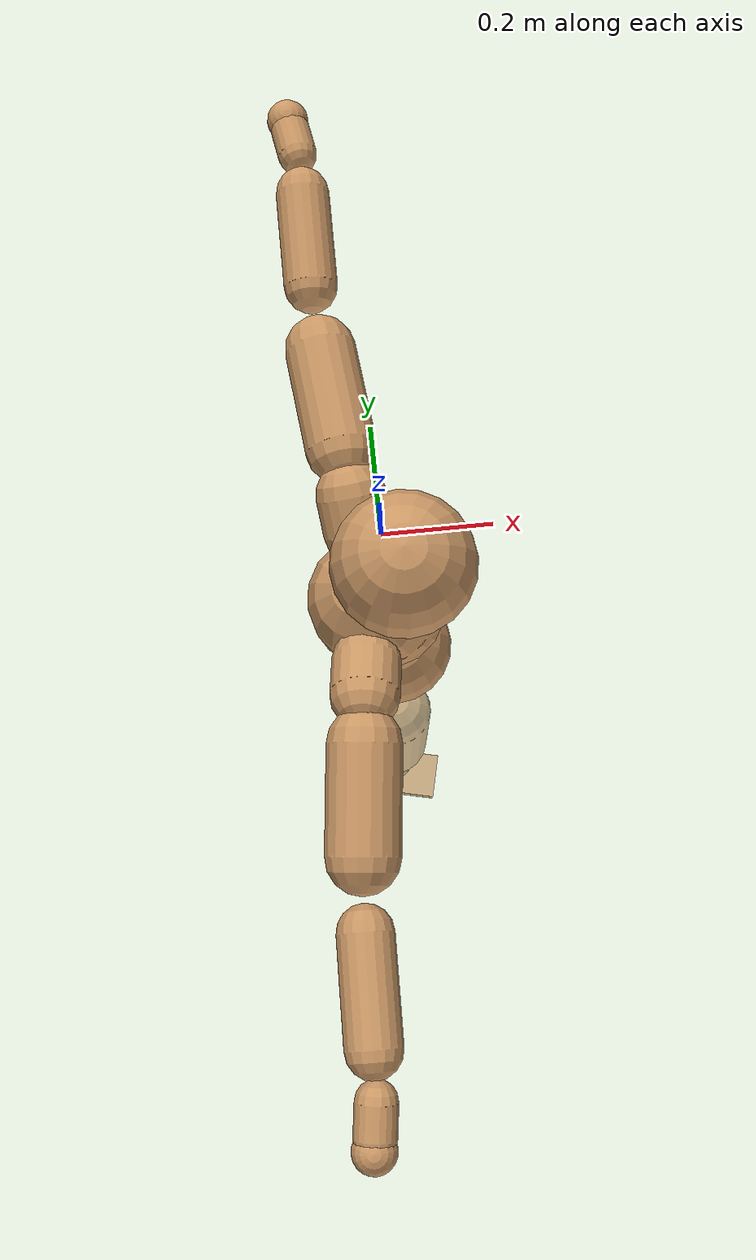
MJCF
<mujoco model="humanoid">
  <compiler coordinate="local" angle="radian"/>
  <default>
    <joint damping="0.0" armature="0.01" stiffness="0.0" limited="true"/>
    <geom conaffinity="1" condim="3" contype="7" margin="0.001" rgba="0.8 0.6 .4 1"/>
  </default>
  <asset>
    <texture type="skybox" builtin="gradient" rgb1=".4 .5 .6" rgb2="0 0 0" width="100" height="100"/>
    <texture builtin="flat" height="1278" mark="cross" markrgb="1 1 1" name="texgeom" random="0.01" rgb1="0.8 0.6 0.4" rgb2="0.8 0.6 0.4" type="cube" width="127"/>
    <texture builtin="checker" height="100" name="texplane" rgb1="0 0 0" rgb2="0.8 0.8 0.8" type="2d" width="100"/>
    <material name="MatPlane" reflectance="0.5" shininess="1" specular="1" texrepeat="60 60" texture="texplane"/>
    <material name="geom" texture="texgeom" texuniform="true"/>
  </asset>
  <worldbody>
    <light cutoff="100" diffuse="1 1 1" dir="-0 0 -1.3" directional="true" exponent="1" pos="0 0 1.3" specular=".1 .1 .1"/>
    <geom conaffinity="1" condim="3" name="floor" pos="0 0 0" rgba="0.8 0.9 0.8 1" size="100 100 .2" type="plane" material="MatPlane"/>
    <body name="Pelvis" pos="0.0004 -0.2077 0.0304">
      <freejoint name="Pelvis"/>
      <geom type="sphere" contype="1" conaffinity="1" density="500" size="0.1026" pos="0.0000 0.0000 0.0000" name="Pelvis"/>
      <body name="L_Hip" pos="-0.0069 0.0811 -0.0959">
        <joint name="L_Hip_x" type="hinge" pos="0 0 0" axis="1 0 0" stiffness="800" damping="80" armature="0.02" range="-180.0000 180.0000"/>
        <joint name="L_Hip_y" type="hinge" pos="0 0 0" axis="0 1 0" stiffness="800" damping="80" armature="0.02" range="-180.0000 180.0000"/>
        <joint name="L_Hip_z" type="hinge" pos="0 0 0" axis="0 0 1" stiffness="800" damping="80" armature="0.02" range="-180.0000 180.0000"/>
        <geom type="capsule" contype="1" conaffinity="1" density="500" fromto="-0.0018 0.0072 -0.0831 -0.0072 0.0288 -0.3324" size="0.0678" name="L_Hip"/>
        <body name="L_Knee" pos="-0.009 0.0359 -0.4155">
          <joint name="L_Knee_x" type="hinge" pos="0 0 0" axis="1 0 0" stiffness="800" damping="80" armature="0.02" range="-180.0000 180.0000"/>
          <joint name="L_Knee_y" type="hinge" pos="0 0 0" axis="0 1 0" stiffness="800" damping="80" armature="0.02" range="-180.0000 180.0000"/>
          <joint name="L_Knee_z" type="hinge" pos="0 0 0" axis="0 0 1" stiffness="800" damping="80" armature="0.02" range="-180.0000 180.0000"/>
          <geom type="capsule" contype="1" conaffinity="1" density="500" fromto="-0.0102 -0.0023 -0.0880 -0.0409 -0.0091 -0.3520" size="0.0575" name="L_Knee"/>
          <body name="L_Ankle" pos="-0.0511 -0.0114 -0.44">
            <joint name="L_Ankle_x" type="hinge" pos="0 0 0" axis="1 0 0" stiffness="800" damping="80" armature="0.02" range="-180.0000 180.0000"/>
            <joint name="L_Ankle_y" type="hinge" pos="0 0 0" axis="0 1 0" stiffness="800" damping="80" armature="0.02" range="-180.0000 180.0000"/>
            <joint name="L_Ankle_z" type="hinge" pos="0 0 0" axis="0 0 1" stiffness="800" damping="80" armature="0.02" range="-180.0000 180.0000"/>
            <geom type="box" contype="1" conaffinity="1" density="500" pos="0.0604 0.0145 -0.0310" size="0.0848 0.0494 0.0222" quat="0.9931 0.0000 0.0000 0.1175" name="L_Ankle"/>
            <body name="L_Toe" pos="0.1207 0.029 -0.0619">
              <joint name="L_Toe_x" type="hinge" pos="0 0 0" axis="1 0 0" stiffness="500" damping="50" armature="0.02" range="-180.0000 180.0000"/>
              <joint name="L_Toe_y" type="hinge" pos="0 0 0" axis="0 1 0" stiffness="500" damping="50" armature="0.02" range="-180.0000 180.0000"/>
              <joint name="L_Toe_z" type="hinge" pos="0 0 0" axis="0 0 1" stiffness="500" damping="50" armature="0.02" range="-180.0000 180.0000"/>
              <geom type="box" contype="1" conaffinity="1" density="500" pos="0.0000 0.0000 0.0311" size="0.001 0.0024 0.0011" quat="0.9924 0.0000 0.0000 0.1233" name="L_Toe"/>
            </body>
          </body>
        </body>
      </body>
      <body name="R_Hip" pos="-0.0027 -0.0787 -0.0952">
        <joint name="R_Hip_x" type="hinge" pos="0 0 0" axis="1 0 0" stiffness="800" damping="80" armature="0.02" range="-180.0000 180.0000"/>
        <joint name="R_Hip_y" type="hinge" pos="0 0 0" axis="0 1 0" stiffness="800" damping="80" armature="0.02" range="-180.0000 180.0000"/>
        <joint name="R_Hip_z" type="hinge" pos="0 0 0" axis="0 0 1" stiffness="800" damping="80" armature="0.02" range="-180.0000 180.0000"/>
        <geom type="capsule" contype="1" conaffinity="1" density="500" fromto="-0.0023 -0.0088 -0.0845 -0.0091 -0.0353 -0.3382" size="0.0669" name="R_Hip"/>
        <body name="R_Knee" pos="-0.0114 -0.0441 -0.4227">
          <joint name="R_Knee_x" type="hinge" pos="0 0 0" axis="1 0 0" stiffness="800" damping="80" armature="0.02" range="-180.0000 180.0000"/>
          <joint name="R_Knee_y" type="hinge" pos="0 0 0" axis="0 1 0" stiffness="800" damping="80" armature="0.02" range="-180.0000 180.0000"/>
          <joint name="R_Knee_z" type="hinge" pos="0 0 0" axis="0 0 1" stiffness="800" damping="80" armature="0.02" range="-180.0000 180.0000"/>
          <geom type="capsule" contype="1" conaffinity="1" density="500" fromto="-0.0097 0.0030 -0.0884 -0.0390 0.0120 -0.3535" size="0.0576" name="R_Knee"/>
          <body name="R_Ankle" pos="-0.0487 0.0151 -0.4419">
            <joint name="R_Ankle_x" type="hinge" pos="0 0 0" axis="1 0 0" stiffness="800" damping="80" armature="0.02" range="-180.0000 180.0000"/>
            <joint name="R_Ankle_y" type="hinge" pos="0 0 0" axis="0 1 0" stiffness="800" damping="80" armature="0.02" range="-180.0000 180.0000"/>
            <joint name="R_Ankle_z" type="hinge" pos="0 0 0" axis="0 0 1" stiffness="800" damping="80" armature="0.02" range="-180.0000 180.0000"/>
            <geom type="box" contype="1" conaffinity="1" density="500" pos="0.0625 -0.0143 -0.0270" size="0.0869 0.0484 0.0224" quat="0.9937 0.0000 0.0000 -0.1125" name="R_Ankle"/>
            <body name="R_Toe" pos="0.1251 -0.0287 -0.0539">
              <joint name="R_Toe_x" type="hinge" pos="0 0 0" axis="1 0 0" stiffness="500" damping="50" armature="0.02" range="-180.0000 180.0000"/>
              <joint name="R_Toe_y" type="hinge" pos="0 0 0" axis="0 1 0" stiffness="500" damping="50" armature="0.02" range="-180.0000 180.0000"/>
              <joint name="R_Toe_z" type="hinge" pos="0 0 0" axis="0 0 1" stiffness="500" damping="50" armature="0.02" range="-180.0000 180.0000"/>
              <geom type="box" contype="1" conaffinity="1" density="500" pos="0.0000 0.0000 0.0290" size="0.0009 0.0024 0.0012" quat="0.9947 0.0000 0.0000 -0.1033" name="R_Toe"/>
            </body>
          </body>
        </body>
      </body>
      <body name="Torso" pos="-0.0268 -0.0023 0.1096">
        <joint name="Torso_x" type="hinge" pos="0 0 0" axis="1 0 0" stiffness="1000" damping="100" armature="0.02" range="-180.0000 180.0000"/>
        <joint name="Torso_y" type="hinge" pos="0 0 0" axis="0 1 0" stiffness="1000" damping="100" armature="0.02" range="-180.0000 180.0000"/>
        <joint name="Torso_z" type="hinge" pos="0 0 0" axis="0 0 1" stiffness="1000" damping="100" armature="0.02" range="-180.0000 180.0000"/>
        <geom type="capsule" contype="1" conaffinity="1" density="500" fromto="-0.0023 0.0020 0.0745 -0.0015 0.0013 0.0497" size="0.0748" name="Torso"/>
        <body name="Spine" pos="-0.0038 0.0033 0.1242">
          <joint name="Spine_x" type="hinge" pos="0 0 0" axis="1 0 0" stiffness="1000" damping="100" armature="0.02" range="-180.0000 180.0000"/>
          <joint name="Spine_y" type="hinge" pos="0 0 0" axis="0 1 0" stiffness="1000" damping="100" armature="0.02" range="-180.0000 180.0000"/>
          <joint name="Spine_z" type="hinge" pos="0 0 0" axis="0 0 1" stiffness="1000" damping="100" armature="0.02" range="-180.0000 180.0000"/>
          <geom type="capsule" contype="1" conaffinity="1" density="500" fromto="0.0180 0.0004 0.0306 0.0120 0.0002 0.0204" size="0.0758" name="Spine"/>
          <body name="Chest" pos="0.0299 0.0006 0.0509">
            <joint name="Chest_x" type="hinge" pos="0 0 0" axis="1 0 0" stiffness="1000" damping="100" armature="0.02" range="-180.0000 180.0000"/>
            <joint name="Chest_y" type="hinge" pos="0 0 0" axis="0 1 0" stiffness="1000" damping="100" armature="0.02" range="-180.0000 180.0000"/>
            <joint name="Chest_z" type="hinge" pos="0 0 0" axis="0 0 1" stiffness="1000" damping="100" armature="0.02" range="-180.0000 180.0000"/>
            <geom type="capsule" contype="1" conaffinity="1" density="500" fromto="-0.0238 -0.0011 0.0926 -0.0159 -0.0008 0.0617" size="0.1013" name="Chest"/>
            <body name="Neck" pos="-0.0408 -0.0035 0.2219">
              <joint name="Neck_x" type="hinge" pos="0 0 0" axis="1 0 0" stiffness="500" damping="50" armature="0.02" range="-180.0000 180.0000"/>
              <joint name="Neck_y" type="hinge" pos="0 0 0" axis="0 1 0" stiffness="500" damping="50" armature="0.02" range="-180.0000 180.0000"/>
              <joint name="Neck_z" type="hinge" pos="0 0 0" axis="0 0 1" stiffness="500" damping="50" armature="0.02" range="-180.0000 180.0000"/>
              <geom type="capsule" contype="1" conaffinity="1" density="500" fromto="0.0120 0.0008 0.0148 0.0480 0.0031 0.0593" size="0.0429" name="Neck"/>
              <body name="Head" pos="0.06 0.0039 0.0741">
                <joint name="Head_x" type="hinge" pos="0 0 0" axis="1 0 0" stiffness="500" damping="50" armature="0.02" range="-180.0000 180.0000"/>
                <joint name="Head_y" type="hinge" pos="0 0 0" axis="0 1 0" stiffness="500" damping="50" armature="0.02" range="-180.0000 180.0000"/>
                <joint name="Head_z" type="hinge" pos="0 0 0" axis="0 0 1" stiffness="500" damping="50" armature="0.02" range="-180.0000 180.0000"/>
                <geom type="sphere" contype="1" conaffinity="1" density="500" size="0.1025" pos="0.0000 0.0000 0.0000" name="Head"/>
              </body>
            </body>
            <body name="L_Thorax" pos="-0.0363 0.0793 0.1213">
              <joint name="L_Thorax_x" type="hinge" pos="0 0 0" axis="1 0 0" stiffness="500" damping="50" armature="0.02" range="-180.0000 180.0000"/>
              <joint name="L_Thorax_y" type="hinge" pos="0 0 0" axis="0 1 0" stiffness="500" damping="50" armature="0.02" range="-180.0000 180.0000"/>
              <joint name="L_Thorax_z" type="hinge" pos="0 0 0" axis="0 0 1" stiffness="500" damping="50" armature="0.02" range="-180.0000 180.0000"/>
              <geom type="capsule" contype="1" conaffinity="1" density="500" fromto="-0.0020 0.0170 0.0070 -0.0082 0.0681 0.0280" size="0.0526" name="L_Thorax"/>
              <body name="L_Shoulder" pos="-0.0102 0.0851 0.035">
                <joint name="L_Shoulder_x" type="hinge" pos="0 0 0" axis="1 0 0" stiffness="500" damping="50" armature="0.02" range="-720.0000 720.0000"/>
                <joint name="L_Shoulder_y" type="hinge" pos="0 0 0" axis="0 1 0" stiffness="500" damping="50" armature="0.02" range="-720.0000 720.0000"/>
                <joint name="L_Shoulder_z" type="hinge" pos="0 0 0" axis="0 0 1" stiffness="500" damping="50" armature="0.02" range="-720.0000 720.0000"/>
                <geom type="capsule" contype="1" conaffinity="1" density="500" fromto="-0.0061 0.0539 -0.0033 -0.0243 0.2157 -0.0131" size="0.0537" name="L_Shoulder"/>
                <body name="L_Elbow" pos="-0.0303 0.2697 -0.0164">
                  <joint name="L_Elbow_x" type="hinge" pos="0 0 0" axis="1 0 0" stiffness="500" damping="50" armature="0.02" range="-720.0000 720.0000"/>
                  <joint name="L_Elbow_y" type="hinge" pos="0 0 0" axis="0 1 0" stiffness="500" damping="50" armature="0.02" range="-720.0000 720.0000"/>
                  <joint name="L_Elbow_z" type="hinge" pos="0 0 0" axis="0 0 1" stiffness="500" damping="50" armature="0.02" range="-720.0000 720.0000"/>
                  <geom type="capsule" contype="1" conaffinity="1" density="500" fromto="-0.0000 0.0503 0.0024 -0.0001 0.2012 0.0097" size="0.0409" name="L_Elbow"/>
                  <body name="L_Wrist" pos="-0.0002 0.2515 0.0121">
                    <joint name="L_Wrist_x" type="hinge" pos="0 0 0" axis="1 0 0" stiffness="300" damping="30" armature="0.02" range="-180.0000 180.0000"/>
                    <joint name="L_Wrist_y" type="hinge" pos="0 0 0" axis="0 1 0" stiffness="300" damping="30" armature="0.02" range="-180.0000 180.0000"/>
                    <joint name="L_Wrist_z" type="hinge" pos="0 0 0" axis="0 0 1" stiffness="300" damping="30" armature="0.02" range="-180.0000 180.0000"/>
                    <geom type="capsule" contype="1" conaffinity="1" density="500" fromto="-0.0026 0.0159 -0.0020 -0.0106 0.0635 -0.0079" size="0.0301" name="L_Wrist"/>
                    <body name="L_Hand" pos="-0.0132 0.0794 -0.0098">
                      <joint name="L_Hand_x" type="hinge" pos="0 0 0" axis="1 0 0" stiffness="300" damping="30" armature="0.02" range="-180.0000 180.0000"/>
                      <joint name="L_Hand_y" type="hinge" pos="0 0 0" axis="0 1 0" stiffness="300" damping="30" armature="0.02" range="-180.0000 180.0000"/>
                      <joint name="L_Hand_z" type="hinge" pos="0 0 0" axis="0 0 1" stiffness="300" damping="30" armature="0.02" range="-180.0000 180.0000"/>
                      <geom type="sphere" contype="1" conaffinity="1" density="500" size="0.0320" pos="0.0000 0.0000 0.0000" name="L_Hand"/>
                    </body>
                  </body>
                </body>
              </body>
            </body>
            <body name="R_Thorax" pos="-0.0421 -0.0816 0.1198">
              <joint name="R_Thorax_x" type="hinge" pos="0 0 0" axis="1 0 0" stiffness="500" damping="50" armature="0.02" range="-180.0000 180.0000"/>
              <joint name="R_Thorax_y" type="hinge" pos="0 0 0" axis="0 1 0" stiffness="500" damping="50" armature="0.02" range="-180.0000 180.0000"/>
              <joint name="R_Thorax_z" type="hinge" pos="0 0 0" axis="0 0 1" stiffness="500" damping="50" armature="0.02" range="-180.0000 180.0000"/>
              <geom type="capsule" contype="1" conaffinity="1" density="500" fromto="-0.0021 -0.0175 0.0075 -0.0083 -0.0699 0.0299" size="0.0513" name="R_Thorax"/>
              <body name="R_Shoulder" pos="-0.0103 -0.0873 0.0373">
                <joint name="R_Shoulder_x" type="hinge" pos="0 0 0" axis="1 0 0" stiffness="500" damping="50" armature="0.02" range="-720.0000 720.0000"/>
                <joint name="R_Shoulder_y" type="hinge" pos="0 0 0" axis="0 1 0" stiffness="500" damping="50" armature="0.02" range="-720.0000 720.0000"/>
                <joint name="R_Shoulder_z" type="hinge" pos="0 0 0" axis="0 0 1" stiffness="500" damping="50" armature="0.02" range="-720.0000 720.0000"/>
                <geom type="capsule" contype="1" conaffinity="1" density="500" fromto="-0.0053 -0.0524 -0.0035 -0.0213 -0.2096 -0.0141" size="0.0552" name="R_Shoulder"/>
                <body name="R_Elbow" pos="-0.0266 -0.262 -0.0177">
                  <joint name="R_Elbow_x" type="hinge" pos="0 0 0" axis="1 0 0" stiffness="500" damping="50" armature="0.02" range="-720.0000 720.0000"/>
                  <joint name="R_Elbow_y" type="hinge" pos="0 0 0" axis="0 1 0" stiffness="500" damping="50" armature="0.02" range="-720.0000 720.0000"/>
                  <joint name="R_Elbow_z" type="hinge" pos="0 0 0" axis="0 0 1" stiffness="500" damping="50" armature="0.02" range="-720.0000 720.0000"/>
                  <geom type="capsule" contype="1" conaffinity="1" density="500" fromto="-0.0007 -0.0520 0.0022 -0.0029 -0.2082 0.0089" size="0.0414" name="R_Elbow"/>
                  <body name="R_Wrist" pos="-0.0036 -0.2602 0.0111">
                    <joint name="R_Wrist_x" type="hinge" pos="0 0 0" axis="1 0 0" stiffness="300" damping="30" armature="0.02" range="-180.0000 180.0000"/>
                    <joint name="R_Wrist_y" type="hinge" pos="0 0 0" axis="0 1 0" stiffness="300" damping="30" armature="0.02" range="-180.0000 180.0000"/>
                    <joint name="R_Wrist_z" type="hinge" pos="0 0 0" axis="0 0 1" stiffness="300" damping="30" armature="0.02" range="-180.0000 180.0000"/>
                    <geom type="capsule" contype="1" conaffinity="1" density="500" fromto="-0.0021 -0.0160 -0.0015 -0.0083 -0.0640 -0.0059" size="0.0309" name="R_Wrist"/>
                    <body name="R_Hand" pos="-0.0104 -0.08 -0.0074">
                      <joint name="R_Hand_x" type="hinge" pos="0 0 0" axis="1 0 0" stiffness="300" damping="30" armature="0.02" range="-180.0000 180.0000"/>
                      <joint name="R_Hand_y" type="hinge" pos="0 0 0" axis="0 1 0" stiffness="300" damping="30" armature="0.02" range="-180.0000 180.0000"/>
                      <joint name="R_Hand_z" type="hinge" pos="0 0 0" axis="0 0 1" stiffness="300" damping="30" armature="0.02" range="-180.0000 180.0000"/>
                      <geom type="sphere" contype="1" conaffinity="1" density="500" size="0.0323" pos="0.0000 0.0000 0.0000" name="R_Hand"/>
                    </body>
                  </body>
                </body>
              </body>
            </body>
          </body>
        </body>
      </body>
    </body>
  </worldbody>
  <actuator>
    <motor name="L_Hip_x" joint="L_Hip_x" gear="500"/>
    <motor name="L_Hip_y" joint="L_Hip_y" gear="500"/>
    <motor name="L_Hip_z" joint="L_Hip_z" gear="500"/>
    <motor name="L_Knee_x" joint="L_Knee_x" gear="500"/>
    <motor name="L_Knee_y" joint="L_Knee_y" gear="500"/>
    <motor name="L_Knee_z" joint="L_Knee_z" gear="500"/>
    <motor name="L_Ankle_x" joint="L_Ankle_x" gear="500"/>
    <motor name="L_Ankle_y" joint="L_Ankle_y" gear="500"/>
    <motor name="L_Ankle_z" joint="L_Ankle_z" gear="500"/>
    <motor name="L_Toe_x" joint="L_Toe_x" gear="500"/>
    <motor name="L_Toe_y" joint="L_Toe_y" gear="500"/>
    <motor name="L_Toe_z" joint="L_Toe_z" gear="500"/>
    <motor name="R_Hip_x" joint="R_Hip_x" gear="500"/>
    <motor name="R_Hip_y" joint="R_Hip_y" gear="500"/>
    <motor name="R_Hip_z" joint="R_Hip_z" gear="500"/>
    <motor name="R_Knee_x" joint="R_Knee_x" gear="500"/>
    <motor name="R_Knee_y" joint="R_Knee_y" gear="500"/>
    <motor name="R_Knee_z" joint="R_Knee_z" gear="500"/>
    <motor name="R_Ankle_x" joint="R_Ankle_x" gear="500"/>
    <motor name="R_Ankle_y" joint="R_Ankle_y" gear="500"/>
    <motor name="R_Ankle_z" joint="R_Ankle_z" gear="500"/>
    <motor name="R_Toe_x" joint="R_Toe_x" gear="500"/>
    <motor name="R_Toe_y" joint="R_Toe_y" gear="500"/>
    <motor name="R_Toe_z" joint="R_Toe_z" gear="500"/>
    <motor name="Torso_x" joint="Torso_x" gear="500"/>
    <motor name="Torso_y" joint="Torso_y" gear="500"/>
    <motor name="Torso_z" joint="Torso_z" gear="500"/>
    <motor name="Spine_x" joint="Spine_x" gear="500"/>
    <motor name="Spine_y" joint="Spine_y" gear="500"/>
    <motor name="Spine_z" joint="Spine_z" gear="500"/>
    <motor name="Chest_x" joint="Chest_x" gear="500"/>
    <motor name="Chest_y" joint="Chest_y" gear="500"/>
    <motor name="Chest_z" joint="Chest_z" gear="500"/>
    <motor name="Neck_x" joint="Neck_x" gear="500"/>
    <motor name="Neck_y" joint="Neck_y" gear="500"/>
    <motor name="Neck_z" joint="Neck_z" gear="500"/>
    <motor name="Head_x" joint="Head_x" gear="500"/>
    <motor name="Head_y" joint="Head_y" gear="500"/>
    <motor name="Head_z" joint="Head_z" gear="500"/>
    <motor name="L_Thorax_x" joint="L_Thorax_x" gear="500"/>
    <motor name="L_Thorax_y" joint="L_Thorax_y" gear="500"/>
    <motor name="L_Thorax_z" joint="L_Thorax_z" gear="500"/>
    <motor name="L_Shoulder_x" joint="L_Shoulder_x" gear="500"/>
    <motor name="L_Shoulder_y" joint="L_Shoulder_y" gear="500"/>
    <motor name="L_Shoulder_z" joint="L_Shoulder_z" gear="500"/>
    <motor name="L_Elbow_x" joint="L_Elbow_x" gear="500"/>
    <motor name="L_Elbow_y" joint="L_Elbow_y" gear="500"/>
    <motor name="L_Elbow_z" joint="L_Elbow_z" gear="500"/>
    <motor name="L_Wrist_x" joint="L_Wrist_x" gear="500"/>
    <motor name="L_Wrist_y" joint="L_Wrist_y" gear="500"/>
    <motor name="L_Wrist_z" joint="L_Wrist_z" gear="500"/>
    <motor name="L_Hand_x" joint="L_Hand_x" gear="500"/>
    <motor name="L_Hand_y" joint="L_Hand_y" gear="500"/>
    <motor name="L_Hand_z" joint="L_Hand_z" gear="500"/>
    <motor name="R_Thorax_x" joint="R_Thorax_x" gear="500"/>
    <motor name="R_Thorax_y" joint="R_Thorax_y" gear="500"/>
    <motor name="R_Thorax_z" joint="R_Thorax_z" gear="500"/>
    <motor name="R_Shoulder_x" joint="R_Shoulder_x" gear="500"/>
    <motor name="R_Shoulder_y" joint="R_Shoulder_y" gear="500"/>
    <motor name="R_Shoulder_z" joint="R_Shoulder_z" gear="500"/>
    <motor name="R_Elbow_x" joint="R_Elbow_x" gear="500"/>
    <motor name="R_Elbow_y" joint="R_Elbow_y" gear="500"/>
    <motor name="R_Elbow_z" joint="R_Elbow_z" gear="500"/>
    <motor name="R_Wrist_x" joint="R_Wrist_x" gear="500"/>
    <motor name="R_Wrist_y" joint="R_Wrist_y" gear="500"/>
    <motor name="R_Wrist_z" joint="R_Wrist_z" gear="500"/>
    <motor name="R_Hand_x" joint="R_Hand_x" gear="500"/>
    <motor name="R_Hand_y" joint="R_Hand_y" gear="500"/>
    <motor name="R_Hand_z" joint="R_Hand_z" gear="500"/>
  </actuator>
  <contact>
    <exclude body1="Torso" body2="Chest"/>
    <exclude body1="Head" body2="Chest"/>
    <exclude body1="R_Knee" body2="R_Toe"/>
    <exclude body1="R_Knee" body2="L_Ankle"/>
    <exclude body1="R_Knee" body2="L_Toe"/>
    <exclude body1="L_Knee" body2="L_Toe"/>
    <exclude body1="L_Knee" body2="R_Ankle"/>
    <exclude body1="L_Knee" body2="R_Toe"/>
    <exclude body1="L_Shoulder" body2="Chest"/>
    <exclude body1="R_Shoulder" body2="Chest"/>
  </contact>
  <sensor/>
  <size njmax="700" nconmax="700"/>
</mujoco>
